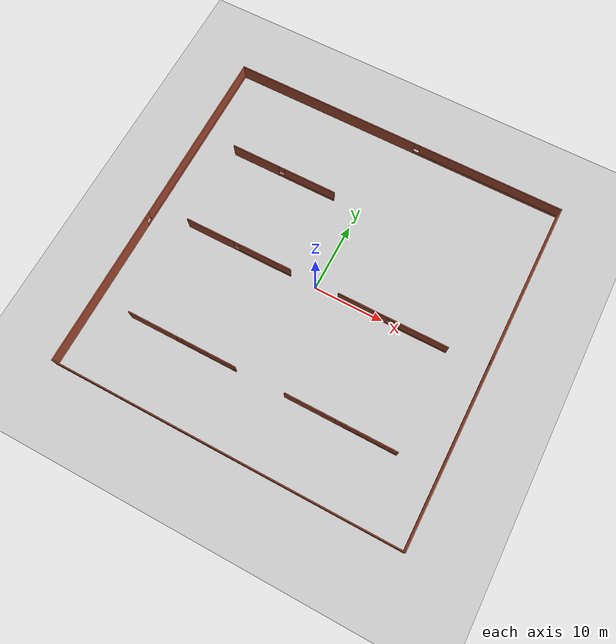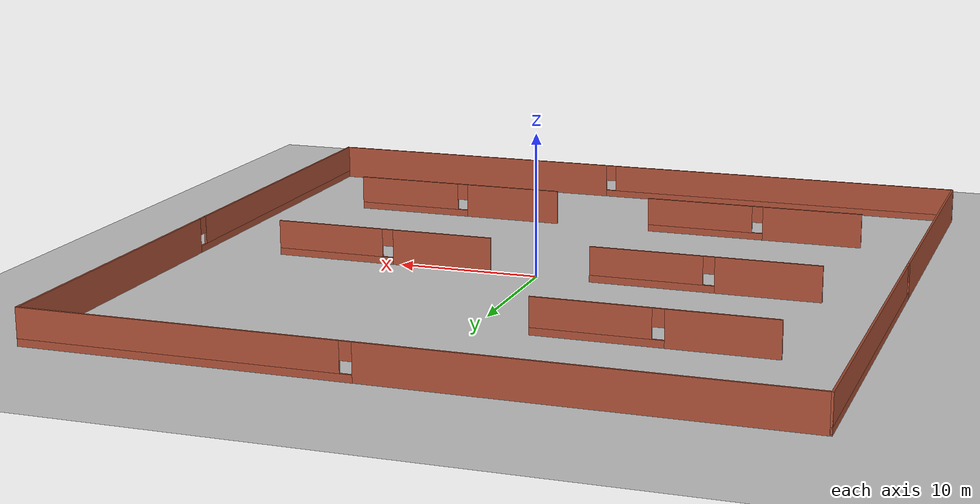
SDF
<sdf version="1.6">
 <world name="default">
  <light name="sun" type="directional">
   <pose>0 0 10 0 -0 0</pose>
   <diffuse>0.8 0.8 0.8 1</diffuse>
   <specular>0.1 0.1 0.1 1</specular>
   <attenuation>
    <range>1000</range>
    <constant>0.9</constant>
    <linear>0.01</linear>
    <quadratic>0.001</quadratic>
   </attenuation>
   <direction>-0.5 0.5 -1</direction>
  </light>
  <model name="ground_plane">
   <static>1</static>
   <link name="link">
    <collision name="collision">
     <geometry><plane><normal>0 0 1</normal><size>100 100</size></plane></geometry>
     <surface><friction><ode><mu>100</mu><mu2>50</mu2></ode></friction></surface>
    </collision>
    <visual name="visual">
     <cast_shadows>0</cast_shadows>
     <geometry><plane><normal>0 0 1</normal><size>100 100</size></plane></geometry>
     <material>
      <script><uri>file://media/materials/scripts/gazebo.material</uri><name>Gazebo/Grey</name></script>
     </material>
    </visual>
   </link>
  </model>
  <gravity>0 0 -9.8</gravity>
  <magnetic_field>6e-06 2.3e-05 -4.2e-05</magnetic_field>
  <atmosphere type="adiabatic"/>
  <physics name="default_physics" default="0" type="ode">
   <max_step_size>0.001</max_step_size>
   <real_time_factor>1</real_time_factor>
   <real_time_update_rate>1000</real_time_update_rate>
  </physics>
  <scene><ambient>0.4 0.4 0.4 1</ambient><background>0.7 0.7 0.7 1</background><shadows>1</shadows></scene>
  <spherical_coordinates>
   <surface_model>EARTH_WGS84</surface_model>
   <latitude_deg>0</latitude_deg>
   <longitude_deg>0</longitude_deg>
   <elevation>0</elevation>
   <heading_deg>0</heading_deg>
  </spherical_coordinates>
  <model name="50m_square_brick">
   <link name="Wall_0">
    <pose>0 25 0 0 -0 0</pose>
    <visual name="Wall_0_Visual_0">
     <pose>-11.1281 0 1.25 0 -0 0</pose>
     <geometry><box><size>27.8939 0.15 2.5</size></box></geometry>
     <material>
      <script><uri>file://media/materials/scripts/gazebo.material</uri><name>Gazebo/Bricks</name></script>
      <ambient>1 1 1 1</ambient>
     </material>
    </visual>
    <collision name="Wall_0_Collision_0">
     <geometry><box><size>27.8939 0.15 2.5</size></box></geometry>
     <pose>-11.1281 0 1.25 0 -0 0</pose>
    </collision>
    <visual name="Wall_0_Visual_1">
     <pose>13.9469 0 0.25 0 -0 0</pose>
     <geometry><box><size>22.2561 0.15 0.5</size></box></geometry>
     <material>
      <script><uri>file://media/materials/scripts/gazebo.material</uri><name>Gazebo/Bricks</name></script>
      <ambient>1 1 1 1</ambient>
     </material>
    </visual>
    <collision name="Wall_0_Collision_1">
     <geometry><box><size>22.2561 0.15 0.5</size></box></geometry>
     <pose>13.9469 0 0.25 0 -0 0</pose>
    </collision>
    <visual name="Wall_0_Visual_2">
     <pose>14.3469 0 1.5 0 -0 0</pose>
     <geometry><box><size>21.4561 0.15 2</size></box></geometry>
     <material>
      <script><uri>file://media/materials/scripts/gazebo.material</uri><name>Gazebo/Bricks</name></script>
      <ambient>1 1 1 1</ambient>
     </material>
    </visual>
    <collision name="Wall_0_Collision_2">
     <geometry><box><size>21.4561 0.15 2</size></box></geometry>
     <pose>14.3469 0 1.5 0 -0 0</pose>
    </collision>
    <visual name="Wall_0_Visual_3">
     <pose>3.21886 0 1.9 0 -0 0</pose>
     <geometry><box><size>0.8 0.15 1.2</size></box></geometry>
     <material>
      <script><uri>file://media/materials/scripts/gazebo.material</uri><name>Gazebo/Bricks</name></script>
      <ambient>1 1 1 1</ambient>
     </material>
    </visual>
    <collision name="Wall_0_Collision_3">
     <geometry><box><size>0.8 0.15 1.2</size></box></geometry>
     <pose>3.21886 0 1.9 0 -0 0</pose>
    </collision>
   </link>
   <link name="Wall_1">
    <pose>25 0 0 0 0 -1.5708</pose>
    <visual name="Wall_1_Visual_0">
     <pose>-13.2759 0 1.25 0 -0 0</pose>
     <geometry><box><size>23.5981 0.15 2.5</size></box></geometry>
     <material>
      <script><uri>file://media/materials/scripts/gazebo.material</uri><name>Gazebo/Bricks</name></script>
      <ambient>1 1 1 1</ambient>
     </material>
    </visual>
    <collision name="Wall_1_Collision_0">
     <geometry><box><size>23.5981 0.15 2.5</size></box></geometry>
     <pose>-13.2759 0 1.25 0 -0 0</pose>
    </collision>
    <visual name="Wall_1_Visual_1">
     <pose>11.7991 0 0.25 0 -0 0</pose>
     <geometry><box><size>26.5519 0.15 0.5</size></box></geometry>
     <material>
      <script><uri>file://media/materials/scripts/gazebo.material</uri><name>Gazebo/Bricks</name></script>
      <ambient>1 1 1 1</ambient>
     </material>
    </visual>
    <collision name="Wall_1_Collision_1">
     <geometry><box><size>26.5519 0.15 0.5</size></box></geometry>
     <pose>11.7991 0 0.25 0 -0 0</pose>
    </collision>
    <visual name="Wall_1_Visual_2">
     <pose>12.1991 0 1.5 0 -0 0</pose>
     <geometry><box><size>25.7519 0.15 2</size></box></geometry>
     <material>
      <script><uri>file://media/materials/scripts/gazebo.material</uri><name>Gazebo/Bricks</name></script>
      <ambient>1 1 1 1</ambient>
     </material>
    </visual>
    <collision name="Wall_1_Collision_2">
     <geometry><box><size>25.7519 0.15 2</size></box></geometry>
     <pose>12.1991 0 1.5 0 -0 0</pose>
    </collision>
    <visual name="Wall_1_Visual_3">
     <pose>-1.07689 0 1.9 0 -0 0</pose>
     <geometry><box><size>0.8 0.15 1.2</size></box></geometry>
     <material>
      <script><uri>file://media/materials/scripts/gazebo.material</uri><name>Gazebo/Bricks</name></script>
      <ambient>1 1 1 1</ambient>
     </material>
    </visual>
    <collision name="Wall_1_Collision_3">
     <geometry><box><size>0.8 0.15 1.2</size></box></geometry>
     <pose>-1.07689 0 1.9 0 -0 0</pose>
    </collision>
   </link>
   <link name="Wall_3">
    <pose>0 -25 0 0 -0 3.14159</pose>
    <visual name="Wall_3_Visual_0">
     <pose>-13.7584 0 1.25 0 -0 0</pose>
     <geometry><box><size>22.6332 0.15 2.5</size></box></geometry>
     <material>
      <script><uri>file://media/materials/scripts/gazebo.material</uri><name>Gazebo/Bricks</name></script>
      <ambient>1 1 1 1</ambient>
     </material>
    </visual>
    <collision name="Wall_3_Collision_0">
     <geometry><box><size>22.6332 0.15 2.5</size></box></geometry>
     <pose>-13.7584 0 1.25 0 -0 0</pose>
    </collision>
    <visual name="Wall_3_Visual_1">
     <pose>11.3166 0 0.25 0 -0 0</pose>
     <geometry><box><size>27.5168 0.15 0.5</size></box></geometry>
     <material>
      <script><uri>file://media/materials/scripts/gazebo.material</uri><name>Gazebo/Bricks</name></script>
      <ambient>1 1 1 1</ambient>
     </material>
    </visual>
    <collision name="Wall_3_Collision_1">
     <geometry><box><size>27.5168 0.15 0.5</size></box></geometry>
     <pose>11.3166 0 0.25 0 -0 0</pose>
    </collision>
    <visual name="Wall_3_Visual_2">
     <pose>11.7166 0 1.5 0 -0 0</pose>
     <geometry><box><size>26.7168 0.15 2</size></box></geometry>
     <material>
      <script><uri>file://media/materials/scripts/gazebo.material</uri><name>Gazebo/Bricks</name></script>
      <ambient>1 1 1 1</ambient>
     </material>
    </visual>
    <collision name="Wall_3_Collision_2">
     <geometry><box><size>26.7168 0.15 2</size></box></geometry>
     <pose>11.7166 0 1.5 0 -0 0</pose>
    </collision>
    <visual name="Wall_3_Visual_3">
     <pose>-2.04181 0 1.9 0 -0 0</pose>
     <geometry><box><size>0.8 0.15 1.2</size></box></geometry>
     <material>
      <script><uri>file://media/materials/scripts/gazebo.material</uri><name>Gazebo/Bricks</name></script>
      <ambient>1 1 1 1</ambient>
     </material>
    </visual>
    <collision name="Wall_3_Collision_3">
     <geometry><box><size>0.8 0.15 1.2</size></box></geometry>
     <pose>-2.04181 0 1.9 0 -0 0</pose>
    </collision>
   </link>
   <link name="Wall_4">
    <pose>-25 0 0 0 -0 1.5708</pose>
    <visual name="Wall_4_Visual_0">
     <pose>-13.7907 0 1.25 0 -0 0</pose>
     <geometry><box><size>22.5686 0.15 2.5</size></box></geometry>
     <material>
      <script><uri>file://media/materials/scripts/gazebo.material</uri><name>Gazebo/Bricks</name></script>
      <ambient>1 1 1 1</ambient>
     </material>
    </visual>
    <collision name="Wall_4_Collision_0">
     <geometry><box><size>22.5686 0.15 2.5</size></box></geometry>
     <pose>-13.7907 0 1.25 0 -0 0</pose>
    </collision>
    <visual name="Wall_4_Visual_1">
     <pose>11.2843 0 0.25 0 -0 0</pose>
     <geometry><box><size>27.5814 0.15 0.5</size></box></geometry>
     <material>
      <script><uri>file://media/materials/scripts/gazebo.material</uri><name>Gazebo/Bricks</name></script>
      <ambient>1 1 1 1</ambient>
     </material>
    </visual>
    <collision name="Wall_4_Collision_1">
     <geometry><box><size>27.5814 0.15 0.5</size></box></geometry>
     <pose>11.2843 0 0.25 0 -0 0</pose>
    </collision>
    <visual name="Wall_4_Visual_2">
     <pose>11.6843 0 1.5 0 -0 0</pose>
     <geometry><box><size>26.7814 0.15 2</size></box></geometry>
     <material>
      <script><uri>file://media/materials/scripts/gazebo.material</uri><name>Gazebo/Bricks</name></script>
      <ambient>1 1 1 1</ambient>
     </material>
    </visual>
    <collision name="Wall_4_Collision_2">
     <geometry><box><size>26.7814 0.15 2</size></box></geometry>
     <pose>11.6843 0 1.5 0 -0 0</pose>
    </collision>
    <visual name="Wall_4_Visual_3">
     <pose>-2.10644 0 1.9 0 -0 0</pose>
     <geometry><box><size>0.8 0.15 1.2</size></box></geometry>
     <material>
      <script><uri>file://media/materials/scripts/gazebo.material</uri><name>Gazebo/Bricks</name></script>
      <ambient>1 1 1 1</ambient>
     </material>
    </visual>
    <collision name="Wall_4_Collision_3">
     <geometry><box><size>0.8 0.15 1.2</size></box></geometry>
     <pose>-2.10644 0 1.9 0 -0 0</pose>
    </collision>
   </link>
   <static>1</static>
  </model>
  <model name="16m_wall_brick_0">
   <pose>-11.8017 -14.9737 0 0 -0 0</pose>
   <link name="Wall_6">
    <pose>-1e-06 0 0 0 -0 0</pose>
    <visual name="Wall_6_Visual_0">
     <pose>-4.36263 0 1.25 0 -0 0</pose>
     <geometry><box><size>7.27474 0.15 2.5</size></box></geometry>
     <material>
      <script><uri>file://media/materials/scripts/gazebo.material</uri><name>Gazebo/Bricks</name></script>
      <ambient>1 1 1 1</ambient>
     </material>
    </visual>
    <collision name="Wall_6_Collision_0">
     <geometry><box><size>7.27474 0.15 2.5</size></box></geometry>
     <pose>-4.36263 0 1.25 0 -0 0</pose>
    </collision>
    <visual name="Wall_6_Visual_1">
     <pose>3.63737 0 0.25 0 -0 0</pose>
     <geometry><box><size>8.72526 0.15 0.5</size></box></geometry>
     <material>
      <script><uri>file://media/materials/scripts/gazebo.material</uri><name>Gazebo/Bricks</name></script>
      <ambient>1 1 1 1</ambient>
     </material>
    </visual>
    <collision name="Wall_6_Collision_1">
     <geometry><box><size>8.72526 0.15 0.5</size></box></geometry>
     <pose>3.63737 0 0.25 0 -0 0</pose>
    </collision>
    <visual name="Wall_6_Visual_2">
     <pose>4.03737 0 1.5 0 -0 0</pose>
     <geometry><box><size>7.92526 0.15 2</size></box></geometry>
     <material>
      <script><uri>file://media/materials/scripts/gazebo.material</uri><name>Gazebo/Bricks</name></script>
      <ambient>1 1 1 1</ambient>
     </material>
    </visual>
    <collision name="Wall_6_Collision_2">
     <geometry><box><size>7.92526 0.15 2</size></box></geometry>
     <pose>4.03737 0 1.5 0 -0 0</pose>
    </collision>
    <visual name="Wall_6_Visual_3">
     <pose>-0.325262 0 1.9 0 -0 0</pose>
     <geometry><box><size>0.8 0.15 1.2</size></box></geometry>
     <material>
      <script><uri>file://media/materials/scripts/gazebo.material</uri><name>Gazebo/Bricks</name></script>
      <ambient>1 1 1 1</ambient>
     </material>
    </visual>
    <collision name="Wall_6_Collision_3">
     <geometry><box><size>0.8 0.15 1.2</size></box></geometry>
     <pose>-0.325262 0 1.9 0 -0 0</pose>
    </collision>
   </link>
   <static>1</static>
  </model>
  <model name="16m_wall_brick_1">
   <pose>11.3389 -14.9737 0 0 -0 0</pose>
   <link name="Wall_6">
    <pose>-1e-06 0 0 0 -0 0</pose>
    <visual name="Wall_6_Visual_0">
     <pose>-4.36263 0 1.25 0 -0 0</pose>
     <geometry><box><size>7.27474 0.15 2.5</size></box></geometry>
     <material>
      <script><uri>file://media/materials/scripts/gazebo.material</uri><name>Gazebo/Bricks</name></script>
      <ambient>1 1 1 1</ambient>
     </material>
    </visual>
    <collision name="Wall_6_Collision_0">
     <geometry><box><size>7.27474 0.15 2.5</size></box></geometry>
     <pose>-4.36263 0 1.25 0 -0 0</pose>
    </collision>
    <visual name="Wall_6_Visual_1">
     <pose>3.63737 0 0.25 0 -0 0</pose>
     <geometry><box><size>8.72526 0.15 0.5</size></box></geometry>
     <material>
      <script><uri>file://media/materials/scripts/gazebo.material</uri><name>Gazebo/Bricks</name></script>
      <ambient>1 1 1 1</ambient>
     </material>
    </visual>
    <collision name="Wall_6_Collision_1">
     <geometry><box><size>8.72526 0.15 0.5</size></box></geometry>
     <pose>3.63737 0 0.25 0 -0 0</pose>
    </collision>
    <visual name="Wall_6_Visual_2">
     <pose>4.03737 0 1.5 0 -0 0</pose>
     <geometry><box><size>7.92526 0.15 2</size></box></geometry>
     <material>
      <script><uri>file://media/materials/scripts/gazebo.material</uri><name>Gazebo/Bricks</name></script>
      <ambient>1 1 1 1</ambient>
     </material>
    </visual>
    <collision name="Wall_6_Collision_2">
     <geometry><box><size>7.92526 0.15 2</size></box></geometry>
     <pose>4.03737 0 1.5 0 -0 0</pose>
    </collision>
    <visual name="Wall_6_Visual_3">
     <pose>-0.325262 0 1.9 0 -0 0</pose>
     <geometry><box><size>0.8 0.15 1.2</size></box></geometry>
     <material>
      <script><uri>file://media/materials/scripts/gazebo.material</uri><name>Gazebo/Bricks</name></script>
      <ambient>1 1 1 1</ambient>
     </material>
    </visual>
    <collision name="Wall_6_Collision_3">
     <geometry><box><size>0.8 0.15 1.2</size></box></geometry>
     <pose>-0.325262 0 1.9 0 -0 0</pose>
    </collision>
   </link>
   <static>1</static>
  </model>
  <model name="16m_wall_brick_2">
   <pose>11.3389 0.001241 0 0 -0 0</pose>
   <link name="Wall_6">
    <pose>-1e-06 0 0 0 -0 0</pose>
    <visual name="Wall_6_Visual_0">
     <pose>-4.36263 0 1.25 0 -0 0</pose>
     <geometry><box><size>7.27474 0.15 2.5</size></box></geometry>
     <material>
      <script><uri>file://media/materials/scripts/gazebo.material</uri><name>Gazebo/Bricks</name></script>
      <ambient>1 1 1 1</ambient>
     </material>
    </visual>
    <collision name="Wall_6_Collision_0">
     <geometry><box><size>7.27474 0.15 2.5</size></box></geometry>
     <pose>-4.36263 0 1.25 0 -0 0</pose>
    </collision>
    <visual name="Wall_6_Visual_1">
     <pose>3.63737 0 0.25 0 -0 0</pose>
     <geometry><box><size>8.72526 0.15 0.5</size></box></geometry>
     <material>
      <script><uri>file://media/materials/scripts/gazebo.material</uri><name>Gazebo/Bricks</name></script>
      <ambient>1 1 1 1</ambient>
     </material>
    </visual>
    <collision name="Wall_6_Collision_1">
     <geometry><box><size>8.72526 0.15 0.5</size></box></geometry>
     <pose>3.63737 0 0.25 0 -0 0</pose>
    </collision>
    <visual name="Wall_6_Visual_2">
     <pose>4.03737 0 1.5 0 -0 0</pose>
     <geometry><box><size>7.92526 0.15 2</size></box></geometry>
     <material>
      <script><uri>file://media/materials/scripts/gazebo.material</uri><name>Gazebo/Bricks</name></script>
      <ambient>1 1 1 1</ambient>
     </material>
    </visual>
    <collision name="Wall_6_Collision_2">
     <geometry><box><size>7.92526 0.15 2</size></box></geometry>
     <pose>4.03737 0 1.5 0 -0 0</pose>
    </collision>
    <visual name="Wall_6_Visual_3">
     <pose>-0.325262 0 1.9 0 -0 0</pose>
     <geometry><box><size>0.8 0.15 1.2</size></box></geometry>
     <material>
      <script><uri>file://media/materials/scripts/gazebo.material</uri><name>Gazebo/Bricks</name></script>
      <ambient>1 1 1 1</ambient>
     </material>
    </visual>
    <collision name="Wall_6_Collision_3">
     <geometry><box><size>0.8 0.15 1.2</size></box></geometry>
     <pose>-0.325262 0 1.9 0 -0 0</pose>
    </collision>
   </link>
   <static>1</static>
  </model>
  <model name="16m_wall_brick_3">
   <pose>-11.8017 0.001241 0 0 -0 0</pose>
   <link name="Wall_6">
    <pose>-1e-06 0 0 0 -0 0</pose>
    <visual name="Wall_6_Visual_0">
     <pose>-4.36263 0 1.25 0 -0 0</pose>
     <geometry><box><size>7.27474 0.15 2.5</size></box></geometry>
     <material>
      <script><uri>file://media/materials/scripts/gazebo.material</uri><name>Gazebo/Bricks</name></script>
      <ambient>1 1 1 1</ambient>
     </material>
    </visual>
    <collision name="Wall_6_Collision_0">
     <geometry><box><size>7.27474 0.15 2.5</size></box></geometry>
     <pose>-4.36263 0 1.25 0 -0 0</pose>
    </collision>
    <visual name="Wall_6_Visual_1">
     <pose>3.63737 0 0.25 0 -0 0</pose>
     <geometry><box><size>8.72526 0.15 0.5</size></box></geometry>
     <material>
      <script><uri>file://media/materials/scripts/gazebo.material</uri><name>Gazebo/Bricks</name></script>
      <ambient>1 1 1 1</ambient>
     </material>
    </visual>
    <collision name="Wall_6_Collision_1">
     <geometry><box><size>8.72526 0.15 0.5</size></box></geometry>
     <pose>3.63737 0 0.25 0 -0 0</pose>
    </collision>
    <visual name="Wall_6_Visual_2">
     <pose>4.03737 0 1.5 0 -0 0</pose>
     <geometry><box><size>7.92526 0.15 2</size></box></geometry>
     <material>
      <script><uri>file://media/materials/scripts/gazebo.material</uri><name>Gazebo/Bricks</name></script>
      <ambient>1 1 1 1</ambient>
     </material>
    </visual>
    <collision name="Wall_6_Collision_2">
     <geometry><box><size>7.92526 0.15 2</size></box></geometry>
     <pose>4.03737 0 1.5 0 -0 0</pose>
    </collision>
    <visual name="Wall_6_Visual_3">
     <pose>-0.325262 0 1.9 0 -0 0</pose>
     <geometry><box><size>0.8 0.15 1.2</size></box></geometry>
     <material>
      <script><uri>file://media/materials/scripts/gazebo.material</uri><name>Gazebo/Bricks</name></script>
      <ambient>1 1 1 1</ambient>
     </material>
    </visual>
    <collision name="Wall_6_Collision_3">
     <geometry><box><size>0.8 0.15 1.2</size></box></geometry>
     <pose>-0.325262 0 1.9 0 -0 0</pose>
    </collision>
   </link>
   <static>1</static>
  </model>
  <model name="16m_wall_brick_4">
   <pose>-11.8017 12.8479 0 0 -0 0</pose>
   <link name="Wall_6">
    <pose>-1e-06 0 0 0 -0 0</pose>
    <visual name="Wall_6_Visual_0">
     <pose>-4.36263 0 1.25 0 -0 0</pose>
     <geometry><box><size>7.27474 0.15 2.5</size></box></geometry>
     <material>
      <script><uri>file://media/materials/scripts/gazebo.material</uri><name>Gazebo/Bricks</name></script>
      <ambient>1 1 1 1</ambient>
     </material>
    </visual>
    <collision name="Wall_6_Collision_0">
     <geometry><box><size>7.27474 0.15 2.5</size></box></geometry>
     <pose>-4.36263 0 1.25 0 -0 0</pose>
    </collision>
    <visual name="Wall_6_Visual_1">
     <pose>3.63737 0 0.25 0 -0 0</pose>
     <geometry><box><size>8.72526 0.15 0.5</size></box></geometry>
     <material>
      <script><uri>file://media/materials/scripts/gazebo.material</uri><name>Gazebo/Bricks</name></script>
      <ambient>1 1 1 1</ambient>
     </material>
    </visual>
    <collision name="Wall_6_Collision_1">
     <geometry><box><size>8.72526 0.15 0.5</size></box></geometry>
     <pose>3.63737 0 0.25 0 -0 0</pose>
    </collision>
    <visual name="Wall_6_Visual_2">
     <pose>4.03737 0 1.5 0 -0 0</pose>
     <geometry><box><size>7.92526 0.15 2</size></box></geometry>
     <material>
      <script><uri>file://media/materials/scripts/gazebo.material</uri><name>Gazebo/Bricks</name></script>
      <ambient>1 1 1 1</ambient>
     </material>
    </visual>
    <collision name="Wall_6_Collision_2">
     <geometry><box><size>7.92526 0.15 2</size></box></geometry>
     <pose>4.03737 0 1.5 0 -0 0</pose>
    </collision>
    <visual name="Wall_6_Visual_3">
     <pose>-0.325262 0 1.9 0 -0 0</pose>
     <geometry><box><size>0.8 0.15 1.2</size></box></geometry>
     <material>
      <script><uri>file://media/materials/scripts/gazebo.material</uri><name>Gazebo/Bricks</name></script>
      <ambient>1 1 1 1</ambient>
     </material>
    </visual>
    <collision name="Wall_6_Collision_3">
     <geometry><box><size>0.8 0.15 1.2</size></box></geometry>
     <pose>-0.325262 0 1.9 0 -0 0</pose>
    </collision>
   </link>
   <static>1</static>
  </model>
 </world>
</sdf>
